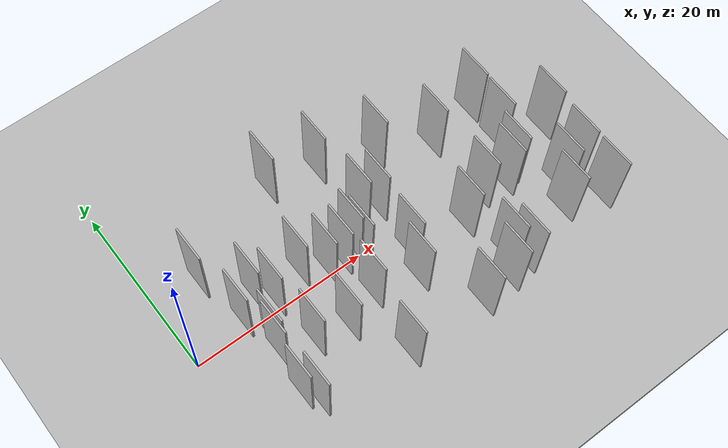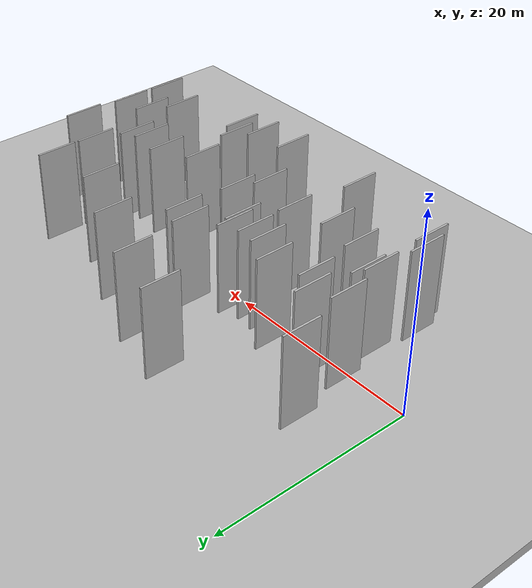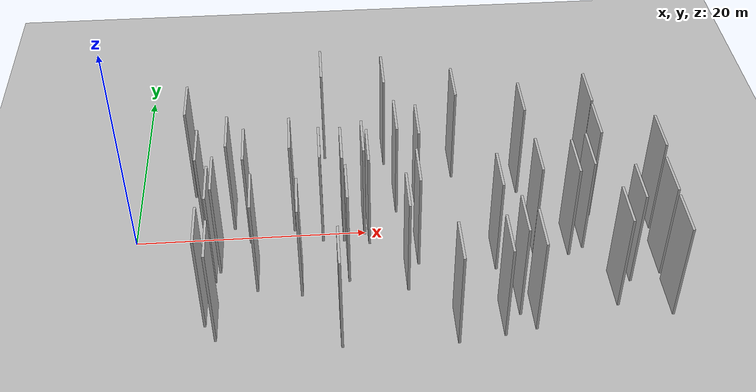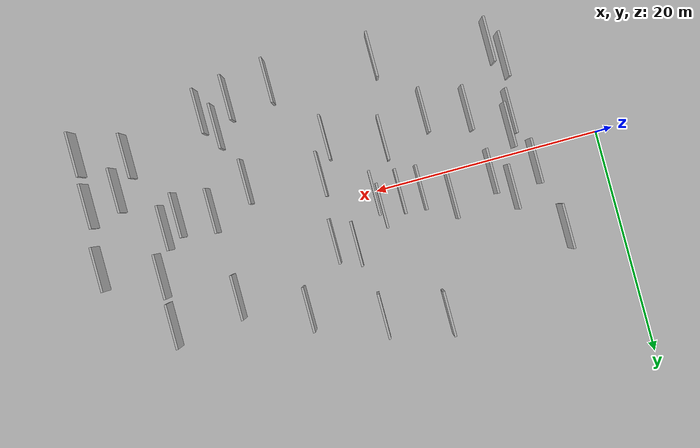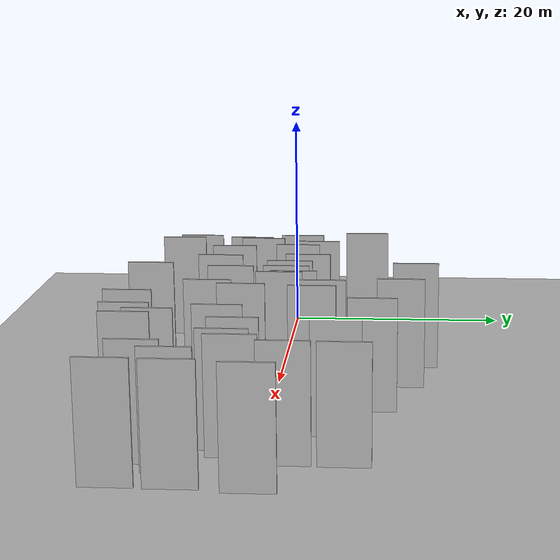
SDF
<?xml version="1.0" encoding="utf-8"?>

<sdf version="1.6">

   <world name="default">

      <gui fullscreen="0">

         <camera name="user_camera">

            <pose>-15 0 4.57585 0 0 0</pose>

            <view_controller>orbit</view_controller>

         </camera>

      </gui>

      <scene>

         <sky>

           <clouds>

             <speed>12</speed>

           </clouds>

         </sky>

         <ambient>0.4 0.4 0.4 1</ambient>

         <background>0.7 0.7 0.7 1</background>

         <shadows>1</shadows>

      </scene>

      <gravity>0 0 -9.8066</gravity>

      <magnetic_field>6e-06 2.3e-05 -4.2e-05</magnetic_field>

      <physics default="0" name="default_physics" type="ode">

         <ode>

            <solver>

               <type>quick</type>

               <iters>10</iters>

               <sor>1.0</sor>

               <use_dynamic_moi_rescaling>0</use_dynamic_moi_rescaling>

            </solver>

            <constraints>

               <cfm>0</cfm>

               <erp>0.2</erp>

               <contact_max_correcting_vel>100</contact_max_correcting_vel>

               <contact_surface_layer>0.001</contact_surface_layer>

            </constraints>

         </ode>

         <max_step_size>0.004</max_step_size>

         <real_time_factor>1</real_time_factor>

         <real_time_update_rate>250</real_time_update_rate>

      </physics>

      <light name="sun" type="directional">

         <cast_shadows>1</cast_shadows>

         <pose>0 0 10 0 0 0</pose>

         <diffuse>0.8 0.8 0.8 1</diffuse>

         <specular>0.2 0.2 0.2 1</specular>

         <attenuation>

            <range>1000</range>

            <constant>0.9</constant>

            <linear>0.01</linear>

            <quadratic>0.001</quadratic>

         </attenuation>

         <direction>-0.5 0.1 -0.9</direction>

      </light>

      <include>

         <name>ground_plane_1</name>

         <uri>model://HANNAS_ground_plane</uri>

         <pose>0 0 0  0 0 0</pose>

      </include>

      <include>

         <name>ground_plane_2</name>

         <uri>model://HANNAS_ground_plane</uri>

         <pose>100 0 0  0 0 0</pose>

      </include>

      <model name="HANNAS_wall_1">

         <static>1</static>

         <pose frame="">38.5879 -1.7263 0.0 0.000000 0.000000 1.570796</pose>

         <link name="link">

            <pose frame="">0 0 5.00 0 0 0</pose>

            <collision name="collision">

               <geometry>

                  <box>

                     <size>4.00 0.2 10.00</size>

                  </box>

               </geometry>

               <max_contacts>10</max_contacts>

               <surface>

                  <contact>

                     <ode/>

                  </contact>

                  <bounce/>

                  <friction>

                     <torsional>

                        <ode/>

                     </torsional>

                     <ode/>

                  </friction>

               </surface>

            </collision>

            <visual name="visual">

               <cast_shadows>0</cast_shadows>

               <geometry>

                  <box>

                     <size>4.00 0.2 10.00</size>

                  </box>

               </geometry>

               <material>

                  <script>

                     <uri>model://HANNAS_wall/materials/scripts</uri>

                     <uri>model://HANNAS_wall/materials/textures</uri>

                     <name>vrc/HANNAS_wall</name>

                  </script>

               </material>

            </visual>

            <self_collide>0</self_collide>

            <enable_wind>0</enable_wind>

            <kinematic>0</kinematic>

         </link>

      </model>

      <model name="HANNAS_wall_2">

         <static>1</static>

         <pose frame="">24.6853 3.2213 0.0 0.000000 0.000000 1.570796</pose>

         <link name="link">

            <pose frame="">0 0 5.00 0 0 0</pose>

            <collision name="collision">

               <geometry>

                  <box>

                     <size>4.00 0.2 10.00</size>

                  </box>

               </geometry>

               <max_contacts>10</max_contacts>

               <surface>

                  <contact>

                     <ode/>

                  </contact>

                  <bounce/>

                  <friction>

                     <torsional>

                        <ode/>

                     </torsional>

                     <ode/>

                  </friction>

               </surface>

            </collision>

            <visual name="visual">

               <cast_shadows>0</cast_shadows>

               <geometry>

                  <box>

                     <size>4.00 0.2 10.00</size>

                  </box>

               </geometry>

               <material>

                  <script>

                     <uri>model://HANNAS_wall/materials/scripts</uri>

                     <uri>model://HANNAS_wall/materials/textures</uri>

                     <name>vrc/HANNAS_wall</name>

                  </script>

               </material>

            </visual>

            <self_collide>0</self_collide>

            <enable_wind>0</enable_wind>

            <kinematic>0</kinematic>

         </link>

      </model>

      <model name="HANNAS_wall_3">

         <static>1</static>

         <pose frame="">34.2482 -2.0889 0.0 0.000000 0.000000 1.570796</pose>

         <link name="link">

            <pose frame="">0 0 5.00 0 0 0</pose>

            <collision name="collision">

               <geometry>

                  <box>

                     <size>4.00 0.2 10.00</size>

                  </box>

               </geometry>

               <max_contacts>10</max_contacts>

               <surface>

                  <contact>

                     <ode/>

                  </contact>

                  <bounce/>

                  <friction>

                     <torsional>

                        <ode/>

                     </torsional>

                     <ode/>

                  </friction>

               </surface>

            </collision>

            <visual name="visual">

               <cast_shadows>0</cast_shadows>

               <geometry>

                  <box>

                     <size>4.00 0.2 10.00</size>

                  </box>

               </geometry>

               <material>

                  <script>

                     <uri>model://HANNAS_wall/materials/scripts</uri>

                     <uri>model://HANNAS_wall/materials/textures</uri>

                     <name>vrc/HANNAS_wall</name>

                  </script>

               </material>

            </visual>

            <self_collide>0</self_collide>

            <enable_wind>0</enable_wind>

            <kinematic>0</kinematic>

         </link>

      </model>

      <model name="HANNAS_wall_4">

         <static>1</static>

         <pose frame="">18.3216 -4.2828 0.0 0.000000 0.000000 1.570796</pose>

         <link name="link">

            <pose frame="">0 0 5.00 0 0 0</pose>

            <collision name="collision">

               <geometry>

                  <box>

                     <size>4.00 0.2 10.00</size>

                  </box>

               </geometry>

               <max_contacts>10</max_contacts>

               <surface>

                  <contact>

                     <ode/>

                  </contact>

                  <bounce/>

                  <friction>

                     <torsional>

                        <ode/>

                     </torsional>

                     <ode/>

                  </friction>

               </surface>

            </collision>

            <visual name="visual">

               <cast_shadows>0</cast_shadows>

               <geometry>

                  <box>

                     <size>4.00 0.2 10.00</size>

                  </box>

               </geometry>

               <material>

                  <script>

                     <uri>model://HANNAS_wall/materials/scripts</uri>

                     <uri>model://HANNAS_wall/materials/textures</uri>

                     <name>vrc/HANNAS_wall</name>

                  </script>

               </material>

            </visual>

            <self_collide>0</self_collide>

            <enable_wind>0</enable_wind>

            <kinematic>0</kinematic>

         </link>

      </model>

      <model name="HANNAS_wall_5">

         <static>1</static>

         <pose frame="">22.8850 3.9371 0.0 0.000000 0.000000 1.570796</pose>

         <link name="link">

            <pose frame="">0 0 5.00 0 0 0</pose>

            <collision name="collision">

               <geometry>

                  <box>

                     <size>4.00 0.2 10.00</size>

                  </box>

               </geometry>

               <max_contacts>10</max_contacts>

               <surface>

                  <contact>

                     <ode/>

                  </contact>

                  <bounce/>

                  <friction>

                     <torsional>

                        <ode/>

                     </torsional>

                     <ode/>

                  </friction>

               </surface>

            </collision>

            <visual name="visual">

               <cast_shadows>0</cast_shadows>

               <geometry>

                  <box>

                     <size>4.00 0.2 10.00</size>

                  </box>

               </geometry>

               <material>

                  <script>

                     <uri>model://HANNAS_wall/materials/scripts</uri>

                     <uri>model://HANNAS_wall/materials/textures</uri>

                     <name>vrc/HANNAS_wall</name>

                  </script>

               </material>

            </visual>

            <self_collide>0</self_collide>

            <enable_wind>0</enable_wind>

            <kinematic>0</kinematic>

         </link>

      </model>

      <model name="HANNAS_wall_6">

         <static>1</static>

         <pose frame="">30.7779 -3.7467 0.0 0.000000 0.000000 1.570796</pose>

         <link name="link">

            <pose frame="">0 0 5.00 0 0 0</pose>

            <collision name="collision">

               <geometry>

                  <box>

                     <size>4.00 0.2 10.00</size>

                  </box>

               </geometry>

               <max_contacts>10</max_contacts>

               <surface>

                  <contact>

                     <ode/>

                  </contact>

                  <bounce/>

                  <friction>

                     <torsional>

                        <ode/>

                     </torsional>

                     <ode/>

                  </friction>

               </surface>

            </collision>

            <visual name="visual">

               <cast_shadows>0</cast_shadows>

               <geometry>

                  <box>

                     <size>4.00 0.2 10.00</size>

                  </box>

               </geometry>

               <material>

                  <script>

                     <uri>model://HANNAS_wall/materials/scripts</uri>

                     <uri>model://HANNAS_wall/materials/textures</uri>

                     <name>vrc/HANNAS_wall</name>

                  </script>

               </material>

            </visual>

            <self_collide>0</self_collide>

            <enable_wind>0</enable_wind>

            <kinematic>0</kinematic>

         </link>

      </model>

      <model name="HANNAS_wall_7">

         <static>1</static>

         <pose frame="">28.3435 8.3205 0.0 0.000000 0.000000 1.570796</pose>

         <link name="link">

            <pose frame="">0 0 5.00 0 0 0</pose>

            <collision name="collision">

               <geometry>

                  <box>

                     <size>4.00 0.2 10.00</size>

                  </box>

               </geometry>

               <max_contacts>10</max_contacts>

               <surface>

                  <contact>

                     <ode/>

                  </contact>

                  <bounce/>

                  <friction>

                     <torsional>

                        <ode/>

                     </torsional>

                     <ode/>

                  </friction>

               </surface>

            </collision>

            <visual name="visual">

               <cast_shadows>0</cast_shadows>

               <geometry>

                  <box>

                     <size>4.00 0.2 10.00</size>

                  </box>

               </geometry>

               <material>

                  <script>

                     <uri>model://HANNAS_wall/materials/scripts</uri>

                     <uri>model://HANNAS_wall/materials/textures</uri>

                     <name>vrc/HANNAS_wall</name>

                  </script>

               </material>

            </visual>

            <self_collide>0</self_collide>

            <enable_wind>0</enable_wind>

            <kinematic>0</kinematic>

         </link>

      </model>

      <model name="HANNAS_wall_8">

         <static>1</static>

         <pose frame="">10.6515 -4.8827 0.0 0.000000 0.000000 1.570796</pose>

         <link name="link">

            <pose frame="">0 0 5.00 0 0 0</pose>

            <collision name="collision">

               <geometry>

                  <box>

                     <size>4.00 0.2 10.00</size>

                  </box>

               </geometry>

               <max_contacts>10</max_contacts>

               <surface>

                  <contact>

                     <ode/>

                  </contact>

                  <bounce/>

                  <friction>

                     <torsional>

                        <ode/>

                     </torsional>

                     <ode/>

                  </friction>

               </surface>

            </collision>

            <visual name="visual">

               <cast_shadows>0</cast_shadows>

               <geometry>

                  <box>

                     <size>4.00 0.2 10.00</size>

                  </box>

               </geometry>

               <material>

                  <script>

                     <uri>model://HANNAS_wall/materials/scripts</uri>

                     <uri>model://HANNAS_wall/materials/textures</uri>

                     <name>vrc/HANNAS_wall</name>

                  </script>

               </material>

            </visual>

            <self_collide>0</self_collide>

            <enable_wind>0</enable_wind>

            <kinematic>0</kinematic>

         </link>

      </model>

      <model name="HANNAS_wall_9">

         <static>1</static>

         <pose frame="">4.9698 7.1995 0.0 0.000000 0.000000 1.570796</pose>

         <link name="link">

            <pose frame="">0 0 5.00 0 0 0</pose>

            <collision name="collision">

               <geometry>

                  <box>

                     <size>4.00 0.2 10.00</size>

                  </box>

               </geometry>

               <max_contacts>10</max_contacts>

               <surface>

                  <contact>

                     <ode/>

                  </contact>

                  <bounce/>

                  <friction>

                     <torsional>

                        <ode/>

                     </torsional>

                     <ode/>

                  </friction>

               </surface>

            </collision>

            <visual name="visual">

               <cast_shadows>0</cast_shadows>

               <geometry>

                  <box>

                     <size>4.00 0.2 10.00</size>

                  </box>

               </geometry>

               <material>

                  <script>

                     <uri>model://HANNAS_wall/materials/scripts</uri>

                     <uri>model://HANNAS_wall/materials/textures</uri>

                     <name>vrc/HANNAS_wall</name>

                  </script>

               </material>

            </visual>

            <self_collide>0</self_collide>

            <enable_wind>0</enable_wind>

            <kinematic>0</kinematic>

         </link>

      </model>

      <model name="HANNAS_wall_10">

         <static>1</static>

         <pose frame="">37.2321 -2.5030 0.0 0.000000 0.000000 1.570796</pose>

         <link name="link">

            <pose frame="">0 0 5.00 0 0 0</pose>

            <collision name="collision">

               <geometry>

                  <box>

                     <size>4.00 0.2 10.00</size>

                  </box>

               </geometry>

               <max_contacts>10</max_contacts>

               <surface>

                  <contact>

                     <ode/>

                  </contact>

                  <bounce/>

                  <friction>

                     <torsional>

                        <ode/>

                     </torsional>

                     <ode/>

                  </friction>

               </surface>

            </collision>

            <visual name="visual">

               <cast_shadows>0</cast_shadows>

               <geometry>

                  <box>

                     <size>4.00 0.2 10.00</size>

                  </box>

               </geometry>

               <material>

                  <script>

                     <uri>model://HANNAS_wall/materials/scripts</uri>

                     <uri>model://HANNAS_wall/materials/textures</uri>

                     <name>vrc/HANNAS_wall</name>

                  </script>

               </material>

            </visual>

            <self_collide>0</self_collide>

            <enable_wind>0</enable_wind>

            <kinematic>0</kinematic>

         </link>

      </model>

      <model name="HANNAS_wall_11">

         <static>1</static>

         <pose frame="">16.7572 11.8053 0.0 0.000000 0.000000 1.570796</pose>

         <link name="link">

            <pose frame="">0 0 5.00 0 0 0</pose>

            <collision name="collision">

               <geometry>

                  <box>

                     <size>4.00 0.2 10.00</size>

                  </box>

               </geometry>

               <max_contacts>10</max_contacts>

               <surface>

                  <contact>

                     <ode/>

                  </contact>

                  <bounce/>

                  <friction>

                     <torsional>

                        <ode/>

                     </torsional>

                     <ode/>

                  </friction>

               </surface>

            </collision>

            <visual name="visual">

               <cast_shadows>0</cast_shadows>

               <geometry>

                  <box>

                     <size>4.00 0.2 10.00</size>

                  </box>

               </geometry>

               <material>

                  <script>

                     <uri>model://HANNAS_wall/materials/scripts</uri>

                     <uri>model://HANNAS_wall/materials/textures</uri>

                     <name>vrc/HANNAS_wall</name>

                  </script>

               </material>

            </visual>

            <self_collide>0</self_collide>

            <enable_wind>0</enable_wind>

            <kinematic>0</kinematic>

         </link>

      </model>

      <model name="HANNAS_wall_12">

         <static>1</static>

         <pose frame="">26.6893 -11.6501 0.0 0.000000 0.000000 1.570796</pose>

         <link name="link">

            <pose frame="">0 0 5.00 0 0 0</pose>

            <collision name="collision">

               <geometry>

                  <box>

                     <size>4.00 0.2 10.00</size>

                  </box>

               </geometry>

               <max_contacts>10</max_contacts>

               <surface>

                  <contact>

                     <ode/>

                  </contact>

                  <bounce/>

                  <friction>

                     <torsional>

                        <ode/>

                     </torsional>

                     <ode/>

                  </friction>

               </surface>

            </collision>

            <visual name="visual">

               <cast_shadows>0</cast_shadows>

               <geometry>

                  <box>

                     <size>4.00 0.2 10.00</size>

                  </box>

               </geometry>

               <material>

                  <script>

                     <uri>model://HANNAS_wall/materials/scripts</uri>

                     <uri>model://HANNAS_wall/materials/textures</uri>

                     <name>vrc/HANNAS_wall</name>

                  </script>

               </material>

            </visual>

            <self_collide>0</self_collide>

            <enable_wind>0</enable_wind>

            <kinematic>0</kinematic>

         </link>

      </model>

      <model name="HANNAS_wall_13">

         <static>1</static>

         <pose frame="">39.9446 2.2514 0.0 0.000000 0.000000 1.570796</pose>

         <link name="link">

            <pose frame="">0 0 5.00 0 0 0</pose>

            <collision name="collision">

               <geometry>

                  <box>

                     <size>4.00 0.2 10.00</size>

                  </box>

               </geometry>

               <max_contacts>10</max_contacts>

               <surface>

                  <contact>

                     <ode/>

                  </contact>

                  <bounce/>

                  <friction>

                     <torsional>

                        <ode/>

                     </torsional>

                     <ode/>

                  </friction>

               </surface>

            </collision>

            <visual name="visual">

               <cast_shadows>0</cast_shadows>

               <geometry>

                  <box>

                     <size>4.00 0.2 10.00</size>

                  </box>

               </geometry>

               <material>

                  <script>

                     <uri>model://HANNAS_wall/materials/scripts</uri>

                     <uri>model://HANNAS_wall/materials/textures</uri>

                     <name>vrc/HANNAS_wall</name>

                  </script>

               </material>

            </visual>

            <self_collide>0</self_collide>

            <enable_wind>0</enable_wind>

            <kinematic>0</kinematic>

         </link>

      </model>

      <model name="HANNAS_wall_14">

         <static>1</static>

         <pose frame="">40.0389 6.6492 0.0 0.000000 0.000000 1.570796</pose>

         <link name="link">

            <pose frame="">0 0 5.00 0 0 0</pose>

            <collision name="collision">

               <geometry>

                  <box>

                     <size>4.00 0.2 10.00</size>

                  </box>

               </geometry>

               <max_contacts>10</max_contacts>

               <surface>

                  <contact>

                     <ode/>

                  </contact>

                  <bounce/>

                  <friction>

                     <torsional>

                        <ode/>

                     </torsional>

                     <ode/>

                  </friction>

               </surface>

            </collision>

            <visual name="visual">

               <cast_shadows>0</cast_shadows>

               <geometry>

                  <box>

                     <size>4.00 0.2 10.00</size>

                  </box>

               </geometry>

               <material>

                  <script>

                     <uri>model://HANNAS_wall/materials/scripts</uri>

                     <uri>model://HANNAS_wall/materials/textures</uri>

                     <name>vrc/HANNAS_wall</name>

                  </script>

               </material>

            </visual>

            <self_collide>0</self_collide>

            <enable_wind>0</enable_wind>

            <kinematic>0</kinematic>

         </link>

      </model>

      <model name="HANNAS_wall_15">

         <static>1</static>

         <pose frame="">7.5108 -2.5393 0.0 0.000000 0.000000 1.570796</pose>

         <link name="link">

            <pose frame="">0 0 5.00 0 0 0</pose>

            <collision name="collision">

               <geometry>

                  <box>

                     <size>4.00 0.2 10.00</size>

                  </box>

               </geometry>

               <max_contacts>10</max_contacts>

               <surface>

                  <contact>

                     <ode/>

                  </contact>

                  <bounce/>

                  <friction>

                     <torsional>

                        <ode/>

                     </torsional>

                     <ode/>

                  </friction>

               </surface>

            </collision>

            <visual name="visual">

               <cast_shadows>0</cast_shadows>

               <geometry>

                  <box>

                     <size>4.00 0.2 10.00</size>

                  </box>

               </geometry>

               <material>

                  <script>

                     <uri>model://HANNAS_wall/materials/scripts</uri>

                     <uri>model://HANNAS_wall/materials/textures</uri>

                     <name>vrc/HANNAS_wall</name>

                  </script>

               </material>

            </visual>

            <self_collide>0</self_collide>

            <enable_wind>0</enable_wind>

            <kinematic>0</kinematic>

         </link>

      </model>

      <model name="HANNAS_wall_16">

         <static>1</static>

         <pose frame="">44.9674 0.2518 0.0 0.000000 0.000000 1.570796</pose>

         <link name="link">

            <pose frame="">0 0 5.00 0 0 0</pose>

            <collision name="collision">

               <geometry>

                  <box>

                     <size>4.00 0.2 10.00</size>

                  </box>

               </geometry>

               <max_contacts>10</max_contacts>

               <surface>

                  <contact>

                     <ode/>

                  </contact>

                  <bounce/>

                  <friction>

                     <torsional>

                        <ode/>

                     </torsional>

                     <ode/>

                  </friction>

               </surface>

            </collision>

            <visual name="visual">

               <cast_shadows>0</cast_shadows>

               <geometry>

                  <box>

                     <size>4.00 0.2 10.00</size>

                  </box>

               </geometry>

               <material>

                  <script>

                     <uri>model://HANNAS_wall/materials/scripts</uri>

                     <uri>model://HANNAS_wall/materials/textures</uri>

                     <name>vrc/HANNAS_wall</name>

                  </script>

               </material>

            </visual>

            <self_collide>0</self_collide>

            <enable_wind>0</enable_wind>

            <kinematic>0</kinematic>

         </link>

      </model>

      <model name="HANNAS_wall_17">

         <static>1</static>

         <pose frame="">19.9192 1.3264 0.0 0.000000 0.000000 1.570796</pose>

         <link name="link">

            <pose frame="">0 0 5.00 0 0 0</pose>

            <collision name="collision">

               <geometry>

                  <box>

                     <size>4.00 0.2 10.00</size>

                  </box>

               </geometry>

               <max_contacts>10</max_contacts>

               <surface>

                  <contact>

                     <ode/>

                  </contact>

                  <bounce/>

                  <friction>

                     <torsional>

                        <ode/>

                     </torsional>

                     <ode/>

                  </friction>

               </surface>

            </collision>

            <visual name="visual">

               <cast_shadows>0</cast_shadows>

               <geometry>

                  <box>

                     <size>4.00 0.2 10.00</size>

                  </box>

               </geometry>

               <material>

                  <script>

                     <uri>model://HANNAS_wall/materials/scripts</uri>

                     <uri>model://HANNAS_wall/materials/textures</uri>

                     <name>vrc/HANNAS_wall</name>

                  </script>

               </material>

            </visual>

            <self_collide>0</self_collide>

            <enable_wind>0</enable_wind>

            <kinematic>0</kinematic>

         </link>

      </model>

      <model name="HANNAS_wall_18">

         <static>1</static>

         <pose frame="">40.1554 -8.5697 0.0 0.000000 0.000000 1.570796</pose>

         <link name="link">

            <pose frame="">0 0 5.00 0 0 0</pose>

            <collision name="collision">

               <geometry>

                  <box>

                     <size>4.00 0.2 10.00</size>

                  </box>

               </geometry>

               <max_contacts>10</max_contacts>

               <surface>

                  <contact>

                     <ode/>

                  </contact>

                  <bounce/>

                  <friction>

                     <torsional>

                        <ode/>

                     </torsional>

                     <ode/>

                  </friction>

               </surface>

            </collision>

            <visual name="visual">

               <cast_shadows>0</cast_shadows>

               <geometry>

                  <box>

                     <size>4.00 0.2 10.00</size>

                  </box>

               </geometry>

               <material>

                  <script>

                     <uri>model://HANNAS_wall/materials/scripts</uri>

                     <uri>model://HANNAS_wall/materials/textures</uri>

                     <name>vrc/HANNAS_wall</name>

                  </script>

               </material>

            </visual>

            <self_collide>0</self_collide>

            <enable_wind>0</enable_wind>

            <kinematic>0</kinematic>

         </link>

      </model>

      <model name="HANNAS_wall_19">

         <static>1</static>

         <pose frame="">7.1141 -3.6545 0.0 0.000000 0.000000 1.570796</pose>

         <link name="link">

            <pose frame="">0 0 5.00 0 0 0</pose>

            <collision name="collision">

               <geometry>

                  <box>

                     <size>4.00 0.2 10.00</size>

                  </box>

               </geometry>

               <max_contacts>10</max_contacts>

               <surface>

                  <contact>

                     <ode/>

                  </contact>

                  <bounce/>

                  <friction>

                     <torsional>

                        <ode/>

                     </torsional>

                     <ode/>

                  </friction>

               </surface>

            </collision>

            <visual name="visual">

               <cast_shadows>0</cast_shadows>

               <geometry>

                  <box>

                     <size>4.00 0.2 10.00</size>

                  </box>

               </geometry>

               <material>

                  <script>

                     <uri>model://HANNAS_wall/materials/scripts</uri>

                     <uri>model://HANNAS_wall/materials/textures</uri>

                     <name>vrc/HANNAS_wall</name>

                  </script>

               </material>

            </visual>

            <self_collide>0</self_collide>

            <enable_wind>0</enable_wind>

            <kinematic>0</kinematic>

         </link>

      </model>

      <model name="HANNAS_wall_20">

         <static>1</static>

         <pose frame="">6.1284 1.0665 0.0 0.000000 0.000000 1.570796</pose>

         <link name="link">

            <pose frame="">0 0 5.00 0 0 0</pose>

            <collision name="collision">

               <geometry>

                  <box>

                     <size>4.00 0.2 10.00</size>

                  </box>

               </geometry>

               <max_contacts>10</max_contacts>

               <surface>

                  <contact>

                     <ode/>

                  </contact>

                  <bounce/>

                  <friction>

                     <torsional>

                        <ode/>

                     </torsional>

                     <ode/>

                  </friction>

               </surface>

            </collision>

            <visual name="visual">

               <cast_shadows>0</cast_shadows>

               <geometry>

                  <box>

                     <size>4.00 0.2 10.00</size>

                  </box>

               </geometry>

               <material>

                  <script>

                     <uri>model://HANNAS_wall/materials/scripts</uri>

                     <uri>model://HANNAS_wall/materials/textures</uri>

                     <name>vrc/HANNAS_wall</name>

                  </script>

               </material>

            </visual>

            <self_collide>0</self_collide>

            <enable_wind>0</enable_wind>

            <kinematic>0</kinematic>

         </link>

      </model>

      <model name="HANNAS_wall_21">

         <static>1</static>

         <pose frame="">44.5120 -5.2518 0.0 0.000000 0.000000 1.570796</pose>

         <link name="link">

            <pose frame="">0 0 5.00 0 0 0</pose>

            <collision name="collision">

               <geometry>

                  <box>

                     <size>4.00 0.2 10.00</size>

                  </box>

               </geometry>

               <max_contacts>10</max_contacts>

               <surface>

                  <contact>

                     <ode/>

                  </contact>

                  <bounce/>

                  <friction>

                     <torsional>

                        <ode/>

                     </torsional>

                     <ode/>

                  </friction>

               </surface>

            </collision>

            <visual name="visual">

               <cast_shadows>0</cast_shadows>

               <geometry>

                  <box>

                     <size>4.00 0.2 10.00</size>

                  </box>

               </geometry>

               <material>

                  <script>

                     <uri>model://HANNAS_wall/materials/scripts</uri>

                     <uri>model://HANNAS_wall/materials/textures</uri>

                     <name>vrc/HANNAS_wall</name>

                  </script>

               </material>

            </visual>

            <self_collide>0</self_collide>

            <enable_wind>0</enable_wind>

            <kinematic>0</kinematic>

         </link>

      </model>

      <model name="HANNAS_wall_22">

         <static>1</static>

         <pose frame="">6.4458 -8.5008 0.0 0.000000 0.000000 1.570796</pose>

         <link name="link">

            <pose frame="">0 0 5.00 0 0 0</pose>

            <collision name="collision">

               <geometry>

                  <box>

                     <size>4.00 0.2 10.00</size>

                  </box>

               </geometry>

               <max_contacts>10</max_contacts>

               <surface>

                  <contact>

                     <ode/>

                  </contact>

                  <bounce/>

                  <friction>

                     <torsional>

                        <ode/>

                     </torsional>

                     <ode/>

                  </friction>

               </surface>

            </collision>

            <visual name="visual">

               <cast_shadows>0</cast_shadows>

               <geometry>

                  <box>

                     <size>4.00 0.2 10.00</size>

                  </box>

               </geometry>

               <material>

                  <script>

                     <uri>model://HANNAS_wall/materials/scripts</uri>

                     <uri>model://HANNAS_wall/materials/textures</uri>

                     <name>vrc/HANNAS_wall</name>

                  </script>

               </material>

            </visual>

            <self_collide>0</self_collide>

            <enable_wind>0</enable_wind>

            <kinematic>0</kinematic>

         </link>

      </model>

      <model name="HANNAS_wall_23">

         <static>1</static>

         <pose frame="">10.0110 0.9259 0.0 0.000000 0.000000 1.570796</pose>

         <link name="link">

            <pose frame="">0 0 5.00 0 0 0</pose>

            <collision name="collision">

               <geometry>

                  <box>

                     <size>4.00 0.2 10.00</size>

                  </box>

               </geometry>

               <max_contacts>10</max_contacts>

               <surface>

                  <contact>

                     <ode/>

                  </contact>

                  <bounce/>

                  <friction>

                     <torsional>

                        <ode/>

                     </torsional>

                     <ode/>

                  </friction>

               </surface>

            </collision>

            <visual name="visual">

               <cast_shadows>0</cast_shadows>

               <geometry>

                  <box>

                     <size>4.00 0.2 10.00</size>

                  </box>

               </geometry>

               <material>

                  <script>

                     <uri>model://HANNAS_wall/materials/scripts</uri>

                     <uri>model://HANNAS_wall/materials/textures</uri>

                     <name>vrc/HANNAS_wall</name>

                  </script>

               </material>

            </visual>

            <self_collide>0</self_collide>

            <enable_wind>0</enable_wind>

            <kinematic>0</kinematic>

         </link>

      </model>

      <model name="HANNAS_wall_24">

         <static>1</static>

         <pose frame="">23.1653 -5.6325 0.0 0.000000 0.000000 1.570796</pose>

         <link name="link">

            <pose frame="">0 0 5.00 0 0 0</pose>

            <collision name="collision">

               <geometry>

                  <box>

                     <size>4.00 0.2 10.00</size>

                  </box>

               </geometry>

               <max_contacts>10</max_contacts>

               <surface>

                  <contact>

                     <ode/>

                  </contact>

                  <bounce/>

                  <friction>

                     <torsional>

                        <ode/>

                     </torsional>

                     <ode/>

                  </friction>

               </surface>

            </collision>

            <visual name="visual">

               <cast_shadows>0</cast_shadows>

               <geometry>

                  <box>

                     <size>4.00 0.2 10.00</size>

                  </box>

               </geometry>

               <material>

                  <script>

                     <uri>model://HANNAS_wall/materials/scripts</uri>

                     <uri>model://HANNAS_wall/materials/textures</uri>

                     <name>vrc/HANNAS_wall</name>

                  </script>

               </material>

            </visual>

            <self_collide>0</self_collide>

            <enable_wind>0</enable_wind>

            <kinematic>0</kinematic>

         </link>

      </model>

      <model name="HANNAS_wall_25">

         <static>1</static>

         <pose frame="">32.0052 -9.0109 0.0 0.000000 0.000000 1.570796</pose>

         <link name="link">

            <pose frame="">0 0 5.00 0 0 0</pose>

            <collision name="collision">

               <geometry>

                  <box>

                     <size>4.00 0.2 10.00</size>

                  </box>

               </geometry>

               <max_contacts>10</max_contacts>

               <surface>

                  <contact>

                     <ode/>

                  </contact>

                  <bounce/>

                  <friction>

                     <torsional>

                        <ode/>

                     </torsional>

                     <ode/>

                  </friction>

               </surface>

            </collision>

            <visual name="visual">

               <cast_shadows>0</cast_shadows>

               <geometry>

                  <box>

                     <size>4.00 0.2 10.00</size>

                  </box>

               </geometry>

               <material>

                  <script>

                     <uri>model://HANNAS_wall/materials/scripts</uri>

                     <uri>model://HANNAS_wall/materials/textures</uri>

                     <name>vrc/HANNAS_wall</name>

                  </script>

               </material>

            </visual>

            <self_collide>0</self_collide>

            <enable_wind>0</enable_wind>

            <kinematic>0</kinematic>

         </link>

      </model>

      <model name="HANNAS_wall_26">

         <static>1</static>

         <pose frame="">13.8259 2.1401 0.0 0.000000 0.000000 1.570796</pose>

         <link name="link">

            <pose frame="">0 0 5.00 0 0 0</pose>

            <collision name="collision">

               <geometry>

                  <box>

                     <size>4.00 0.2 10.00</size>

                  </box>

               </geometry>

               <max_contacts>10</max_contacts>

               <surface>

                  <contact>

                     <ode/>

                  </contact>

                  <bounce/>

                  <friction>

                     <torsional>

                        <ode/>

                     </torsional>

                     <ode/>

                  </friction>

               </surface>

            </collision>

            <visual name="visual">

               <cast_shadows>0</cast_shadows>

               <geometry>

                  <box>

                     <size>4.00 0.2 10.00</size>

                  </box>

               </geometry>

               <material>

                  <script>

                     <uri>model://HANNAS_wall/materials/scripts</uri>

                     <uri>model://HANNAS_wall/materials/textures</uri>

                     <name>vrc/HANNAS_wall</name>

                  </script>

               </material>

            </visual>

            <self_collide>0</self_collide>

            <enable_wind>0</enable_wind>

            <kinematic>0</kinematic>

         </link>

      </model>

      <model name="HANNAS_wall_27">

         <static>1</static>

         <pose frame="">18.0972 0.5466 0.0 0.000000 0.000000 1.570796</pose>

         <link name="link">

            <pose frame="">0 0 5.00 0 0 0</pose>

            <collision name="collision">

               <geometry>

                  <box>

                     <size>4.00 0.2 10.00</size>

                  </box>

               </geometry>

               <max_contacts>10</max_contacts>

               <surface>

                  <contact>

                     <ode/>

                  </contact>

                  <bounce/>

                  <friction>

                     <torsional>

                        <ode/>

                     </torsional>

                     <ode/>

                  </friction>

               </surface>

            </collision>

            <visual name="visual">

               <cast_shadows>0</cast_shadows>

               <geometry>

                  <box>

                     <size>4.00 0.2 10.00</size>

                  </box>

               </geometry>

               <material>

                  <script>

                     <uri>model://HANNAS_wall/materials/scripts</uri>

                     <uri>model://HANNAS_wall/materials/textures</uri>

                     <name>vrc/HANNAS_wall</name>

                  </script>

               </material>

            </visual>

            <self_collide>0</self_collide>

            <enable_wind>0</enable_wind>

            <kinematic>0</kinematic>

         </link>

      </model>

      <model name="HANNAS_wall_28">

         <static>1</static>

         <pose frame="">17.4123 -11.4352 0.0 0.000000 0.000000 1.570796</pose>

         <link name="link">

            <pose frame="">0 0 5.00 0 0 0</pose>

            <collision name="collision">

               <geometry>

                  <box>

                     <size>4.00 0.2 10.00</size>

                  </box>

               </geometry>

               <max_contacts>10</max_contacts>

               <surface>

                  <contact>

                     <ode/>

                  </contact>

                  <bounce/>

                  <friction>

                     <torsional>

                        <ode/>

                     </torsional>

                     <ode/>

                  </friction>

               </surface>

            </collision>

            <visual name="visual">

               <cast_shadows>0</cast_shadows>

               <geometry>

                  <box>

                     <size>4.00 0.2 10.00</size>

                  </box>

               </geometry>

               <material>

                  <script>

                     <uri>model://HANNAS_wall/materials/scripts</uri>

                     <uri>model://HANNAS_wall/materials/textures</uri>

                     <name>vrc/HANNAS_wall</name>

                  </script>

               </material>

            </visual>

            <self_collide>0</self_collide>

            <enable_wind>0</enable_wind>

            <kinematic>0</kinematic>

         </link>

      </model>

      <model name="HANNAS_wall_29">

         <static>1</static>

         <pose frame="">20.2722 0.1124 0.0 0.000000 0.000000 1.570796</pose>

         <link name="link">

            <pose frame="">0 0 5.00 0 0 0</pose>

            <collision name="collision">

               <geometry>

                  <box>

                     <size>4.00 0.2 10.00</size>

                  </box>

               </geometry>

               <max_contacts>10</max_contacts>

               <surface>

                  <contact>

                     <ode/>

                  </contact>

                  <bounce/>

                  <friction>

                     <torsional>

                        <ode/>

                     </torsional>

                     <ode/>

                  </friction>

               </surface>

            </collision>

            <visual name="visual">

               <cast_shadows>0</cast_shadows>

               <geometry>

                  <box>

                     <size>4.00 0.2 10.00</size>

                  </box>

               </geometry>

               <material>

                  <script>

                     <uri>model://HANNAS_wall/materials/scripts</uri>

                     <uri>model://HANNAS_wall/materials/textures</uri>

                     <name>vrc/HANNAS_wall</name>

                  </script>

               </material>

            </visual>

            <self_collide>0</self_collide>

            <enable_wind>0</enable_wind>

            <kinematic>0</kinematic>

         </link>

      </model>

      <model name="HANNAS_wall_30">

         <static>1</static>

         <pose frame="">8.5723 2.7113 0.0 0.000000 0.000000 1.570796</pose>

         <link name="link">

            <pose frame="">0 0 5.00 0 0 0</pose>

            <collision name="collision">

               <geometry>

                  <box>

                     <size>4.00 0.2 10.00</size>

                  </box>

               </geometry>

               <max_contacts>10</max_contacts>

               <surface>

                  <contact>

                     <ode/>

                  </contact>

                  <bounce/>

                  <friction>

                     <torsional>

                        <ode/>

                     </torsional>

                     <ode/>

                  </friction>

               </surface>

            </collision>

            <visual name="visual">

               <cast_shadows>0</cast_shadows>

               <geometry>

                  <box>

                     <size>4.00 0.2 10.00</size>

                  </box>

               </geometry>

               <material>

                  <script>

                     <uri>model://HANNAS_wall/materials/scripts</uri>

                     <uri>model://HANNAS_wall/materials/textures</uri>

                     <name>vrc/HANNAS_wall</name>

                  </script>

               </material>

            </visual>

            <self_collide>0</self_collide>

            <enable_wind>0</enable_wind>

            <kinematic>0</kinematic>

         </link>

      </model>

      <model name="HANNAS_wall_31">

         <static>1</static>

         <pose frame="">44.4286 -9.8482 0.0 0.000000 0.000000 1.570796</pose>

         <link name="link">

            <pose frame="">0 0 5.00 0 0 0</pose>

            <collision name="collision">

               <geometry>

                  <box>

                     <size>4.00 0.2 10.00</size>

                  </box>

               </geometry>

               <max_contacts>10</max_contacts>

               <surface>

                  <contact>

                     <ode/>

                  </contact>

                  <bounce/>

                  <friction>

                     <torsional>

                        <ode/>

                     </torsional>

                     <ode/>

                  </friction>

               </surface>

            </collision>

            <visual name="visual">

               <cast_shadows>0</cast_shadows>

               <geometry>

                  <box>

                     <size>4.00 0.2 10.00</size>

                  </box>

               </geometry>

               <material>

                  <script>

                     <uri>model://HANNAS_wall/materials/scripts</uri>

                     <uri>model://HANNAS_wall/materials/textures</uri>

                     <name>vrc/HANNAS_wall</name>

                  </script>

               </material>

            </visual>

            <self_collide>0</self_collide>

            <enable_wind>0</enable_wind>

            <kinematic>0</kinematic>

         </link>

      </model>

      <model name="HANNAS_wall_32">

         <static>1</static>

         <pose frame="">16.2725 0.7011 0.0 0.000000 0.000000 1.570796</pose>

         <link name="link">

            <pose frame="">0 0 5.00 0 0 0</pose>

            <collision name="collision">

               <geometry>

                  <box>

                     <size>4.00 0.2 10.00</size>

                  </box>

               </geometry>

               <max_contacts>10</max_contacts>

               <surface>

                  <contact>

                     <ode/>

                  </contact>

                  <bounce/>

                  <friction>

                     <torsional>

                        <ode/>

                     </torsional>

                     <ode/>

                  </friction>

               </surface>

            </collision>

            <visual name="visual">

               <cast_shadows>0</cast_shadows>

               <geometry>

                  <box>

                     <size>4.00 0.2 10.00</size>

                  </box>

               </geometry>

               <material>

                  <script>

                     <uri>model://HANNAS_wall/materials/scripts</uri>

                     <uri>model://HANNAS_wall/materials/textures</uri>

                     <name>vrc/HANNAS_wall</name>

                  </script>

               </material>

            </visual>

            <self_collide>0</self_collide>

            <enable_wind>0</enable_wind>

            <kinematic>0</kinematic>

         </link>

      </model>

      <model name="HANNAS_wall_33">

         <static>1</static>

         <pose frame="">22.2388 10.5591 0.0 0.000000 0.000000 1.570796</pose>

         <link name="link">

            <pose frame="">0 0 5.00 0 0 0</pose>

            <collision name="collision">

               <geometry>

                  <box>

                     <size>4.00 0.2 10.00</size>

                  </box>

               </geometry>

               <max_contacts>10</max_contacts>

               <surface>

                  <contact>

                     <ode/>

                  </contact>

                  <bounce/>

                  <friction>

                     <torsional>

                        <ode/>

                     </torsional>

                     <ode/>

                  </friction>

               </surface>

            </collision>

            <visual name="visual">

               <cast_shadows>0</cast_shadows>

               <geometry>

                  <box>

                     <size>4.00 0.2 10.00</size>

                  </box>

               </geometry>

               <material>

                  <script>

                     <uri>model://HANNAS_wall/materials/scripts</uri>

                     <uri>model://HANNAS_wall/materials/textures</uri>

                     <name>vrc/HANNAS_wall</name>

                  </script>

               </material>

            </visual>

            <self_collide>0</self_collide>

            <enable_wind>0</enable_wind>

            <kinematic>0</kinematic>

         </link>

      </model>

      <model name="HANNAS_wall_34">

         <static>1</static>

         <pose frame="">34.0075 5.7092 0.0 0.000000 0.000000 1.570796</pose>

         <link name="link">

            <pose frame="">0 0 5.00 0 0 0</pose>

            <collision name="collision">

               <geometry>

                  <box>

                     <size>4.00 0.2 10.00</size>

                  </box>

               </geometry>

               <max_contacts>10</max_contacts>

               <surface>

                  <contact>

                     <ode/>

                  </contact>

                  <bounce/>

                  <friction>

                     <torsional>

                        <ode/>

                     </torsional>

                     <ode/>

                  </friction>

               </surface>

            </collision>

            <visual name="visual">

               <cast_shadows>0</cast_shadows>

               <geometry>

                  <box>

                     <size>4.00 0.2 10.00</size>

                  </box>

               </geometry>

               <material>

                  <script>

                     <uri>model://HANNAS_wall/materials/scripts</uri>

                     <uri>model://HANNAS_wall/materials/textures</uri>

                     <name>vrc/HANNAS_wall</name>

                  </script>

               </material>

            </visual>

            <self_collide>0</self_collide>

            <enable_wind>0</enable_wind>

            <kinematic>0</kinematic>

         </link>

      </model>

      <model name="HANNAS_wall_35">

         <static>1</static>

         <pose frame="">30.4827 -11.1525 0.0 0.000000 0.000000 1.570796</pose>

         <link name="link">

            <pose frame="">0 0 5.00 0 0 0</pose>

            <collision name="collision">

               <geometry>

                  <box>

                     <size>4.00 0.2 10.00</size>

                  </box>

               </geometry>

               <max_contacts>10</max_contacts>

               <surface>

                  <contact>

                     <ode/>

                  </contact>

                  <bounce/>

                  <friction>

                     <torsional>

                        <ode/>

                     </torsional>

                     <ode/>

                  </friction>

               </surface>

            </collision>

            <visual name="visual">

               <cast_shadows>0</cast_shadows>

               <geometry>

                  <box>

                     <size>4.00 0.2 10.00</size>

                  </box>

               </geometry>

               <material>

                  <script>

                     <uri>model://HANNAS_wall/materials/scripts</uri>

                     <uri>model://HANNAS_wall/materials/textures</uri>

                     <name>vrc/HANNAS_wall</name>

                  </script>

               </material>

            </visual>

            <self_collide>0</self_collide>

            <enable_wind>0</enable_wind>

            <kinematic>0</kinematic>

         </link>

      </model>

      <model name="HANNAS_wall_36">

         <static>1</static>

         <pose frame="">7.3474 -10.0564 0.0 0.000000 0.000000 1.570796</pose>

         <link name="link">

            <pose frame="">0 0 5.00 0 0 0</pose>

            <collision name="collision">

               <geometry>

                  <box>

                     <size>4.00 0.2 10.00</size>

                  </box>

               </geometry>

               <max_contacts>10</max_contacts>

               <surface>

                  <contact>

                     <ode/>

                  </contact>

                  <bounce/>

                  <friction>

                     <torsional>

                        <ode/>

                     </torsional>

                     <ode/>

                  </friction>

               </surface>

            </collision>

            <visual name="visual">

               <cast_shadows>0</cast_shadows>

               <geometry>

                  <box>

                     <size>4.00 0.2 10.00</size>

                  </box>

               </geometry>

               <material>

                  <script>

                     <uri>model://HANNAS_wall/materials/scripts</uri>

                     <uri>model://HANNAS_wall/materials/textures</uri>

                     <name>vrc/HANNAS_wall</name>

                  </script>

               </material>

            </visual>

            <self_collide>0</self_collide>

            <enable_wind>0</enable_wind>

            <kinematic>0</kinematic>

         </link>

      </model>

      <model name="HANNAS_wall_37">

         <static>1</static>

         <pose frame="">41.7923 -5.9343 0.0 0.000000 0.000000 1.570796</pose>

         <link name="link">

            <pose frame="">0 0 5.00 0 0 0</pose>

            <collision name="collision">

               <geometry>

                  <box>

                     <size>4.00 0.2 10.00</size>

                  </box>

               </geometry>

               <max_contacts>10</max_contacts>

               <surface>

                  <contact>

                     <ode/>

                  </contact>

                  <bounce/>

                  <friction>

                     <torsional>

                        <ode/>

                     </torsional>

                     <ode/>

                  </friction>

               </surface>

            </collision>

            <visual name="visual">

               <cast_shadows>0</cast_shadows>

               <geometry>

                  <box>

                     <size>4.00 0.2 10.00</size>

                  </box>

               </geometry>

               <material>

                  <script>

                     <uri>model://HANNAS_wall/materials/scripts</uri>

                     <uri>model://HANNAS_wall/materials/textures</uri>

                     <name>vrc/HANNAS_wall</name>

                  </script>

               </material>

            </visual>

            <self_collide>0</self_collide>

            <enable_wind>0</enable_wind>

            <kinematic>0</kinematic>

         </link>

      </model>

      <model name="HANNAS_wall_38">

         <static>1</static>

         <pose frame="">24.2810 -2.6853 0.0 0.000000 0.000000 1.570796</pose>

         <link name="link">

            <pose frame="">0 0 5.00 0 0 0</pose>

            <collision name="collision">

               <geometry>

                  <box>

                     <size>4.00 0.2 10.00</size>

                  </box>

               </geometry>

               <max_contacts>10</max_contacts>

               <surface>

                  <contact>

                     <ode/>

                  </contact>

                  <bounce/>

                  <friction>

                     <torsional>

                        <ode/>

                     </torsional>

                     <ode/>

                  </friction>

               </surface>

            </collision>

            <visual name="visual">

               <cast_shadows>0</cast_shadows>

               <geometry>

                  <box>

                     <size>4.00 0.2 10.00</size>

                  </box>

               </geometry>

               <material>

                  <script>

                     <uri>model://HANNAS_wall/materials/scripts</uri>

                     <uri>model://HANNAS_wall/materials/textures</uri>

                     <name>vrc/HANNAS_wall</name>

                  </script>

               </material>

            </visual>

            <self_collide>0</self_collide>

            <enable_wind>0</enable_wind>

            <kinematic>0</kinematic>

         </link>

      </model>

      <model name="HANNAS_wall_39">

         <static>1</static>

         <pose frame="">14.3359 -5.6852 0.0 0.000000 0.000000 1.570796</pose>

         <link name="link">

            <pose frame="">0 0 5.00 0 0 0</pose>

            <collision name="collision">

               <geometry>

                  <box>

                     <size>4.00 0.2 10.00</size>

                  </box>

               </geometry>

               <max_contacts>10</max_contacts>

               <surface>

                  <contact>

                     <ode/>

                  </contact>

                  <bounce/>

                  <friction>

                     <torsional>

                        <ode/>

                     </torsional>

                     <ode/>

                  </friction>

               </surface>

            </collision>

            <visual name="visual">

               <cast_shadows>0</cast_shadows>

               <geometry>

                  <box>

                     <size>4.00 0.2 10.00</size>

                  </box>

               </geometry>

               <material>

                  <script>

                     <uri>model://HANNAS_wall/materials/scripts</uri>

                     <uri>model://HANNAS_wall/materials/textures</uri>

                     <name>vrc/HANNAS_wall</name>

                  </script>

               </material>

            </visual>

            <self_collide>0</self_collide>

            <enable_wind>0</enable_wind>

            <kinematic>0</kinematic>

         </link>

      </model>

      <model name="HANNAS_wall_40">

         <static>1</static>

         <pose frame="">33.0797 -10.6384 0.0 0.000000 0.000000 1.570796</pose>

         <link name="link">

            <pose frame="">0 0 5.00 0 0 0</pose>

            <collision name="collision">

               <geometry>

                  <box>

                     <size>4.00 0.2 10.00</size>

                  </box>

               </geometry>

               <max_contacts>10</max_contacts>

               <surface>

                  <contact>

                     <ode/>

                  </contact>

                  <bounce/>

                  <friction>

                     <torsional>

                        <ode/>

                     </torsional>

                     <ode/>

                  </friction>

               </surface>

            </collision>

            <visual name="visual">

               <cast_shadows>0</cast_shadows>

               <geometry>

                  <box>

                     <size>4.00 0.2 10.00</size>

                  </box>

               </geometry>

               <material>

                  <script>

                     <uri>model://HANNAS_wall/materials/scripts</uri>

                     <uri>model://HANNAS_wall/materials/textures</uri>

                     <name>vrc/HANNAS_wall</name>

                  </script>

               </material>

            </visual>

            <self_collide>0</self_collide>

            <enable_wind>0</enable_wind>

            <kinematic>0</kinematic>

         </link>

      </model>

   </world>

</sdf>
